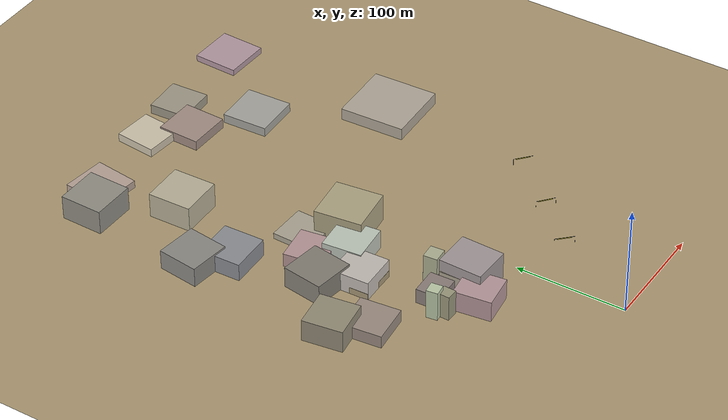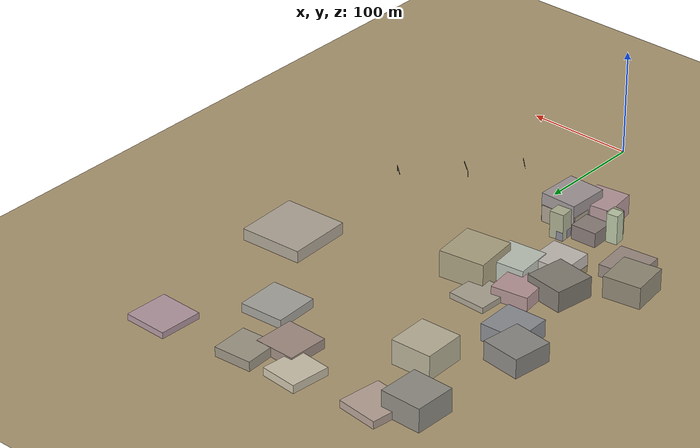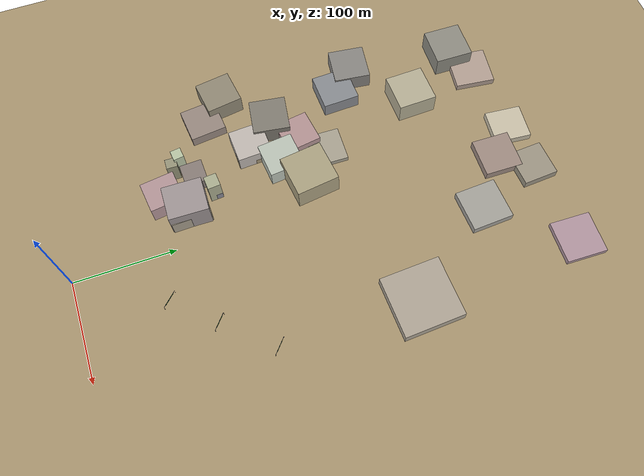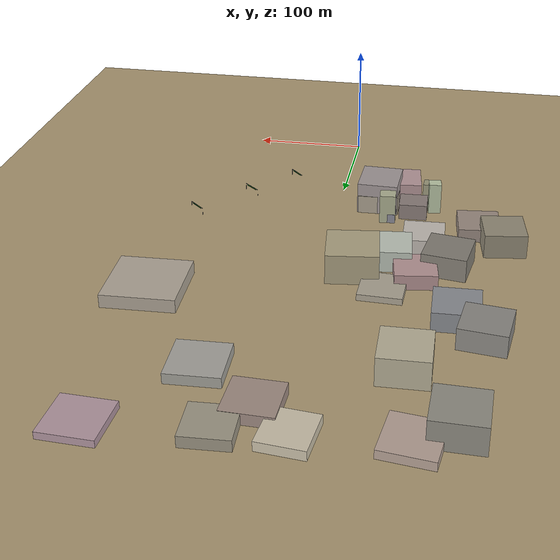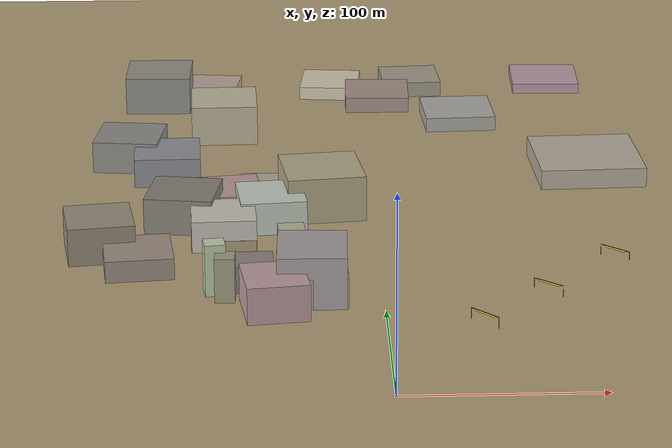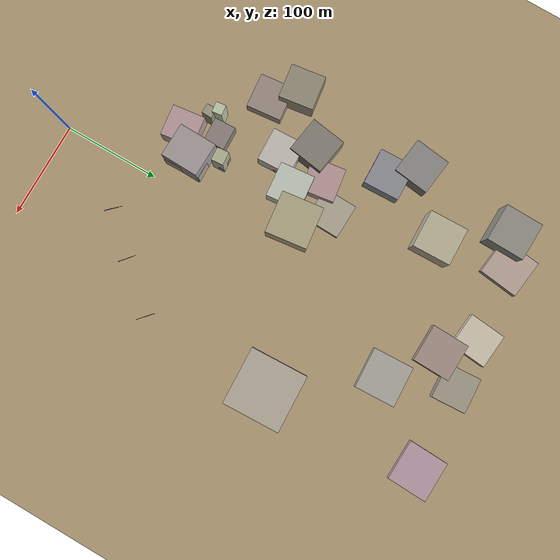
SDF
<sdf version="1.9">
 <world name="crossroad_world">
  <model name="ground_plane">
   <static>true</static>
   <pose>0 0 -0.05 0 0 0</pose>
   <link name="link">
    <collision name="collision">
     <geometry><plane><normal>0 0 1</normal><size>10000 10000</size></plane></geometry>
    </collision>
    <visual name="visual">
     <geometry><plane><normal>0 0 1</normal><size>15000 15000</size></plane></geometry>
     <material><ambient>0.68 0.60 0.45 1</ambient><diffuse>0.68 0.60 0.45 1</diffuse></material>
    </visual>
   </link>
  </model>
  <model name="gantry_73">
   <static>true</static>
   <pose>123.472 164.761 0 0 0 2.421</pose>
   <link name="link">
    <visual name="post_l">
     <pose>-8.900 0 2.925 0 0 0</pose>
     <geometry><cylinder><radius>0.1</radius><length>5.85</length></cylinder></geometry>
     <material><ambient>0.30 0.30 0.35 1</ambient><diffuse>0.30 0.30 0.35 1</diffuse></material>
    </visual>
    <visual name="post_r">
     <pose>8.900 0 2.925 0 0 0</pose>
     <geometry><cylinder><radius>0.1</radius><length>5.85</length></cylinder></geometry>
     <material><ambient>0.30 0.30 0.35 1</ambient><diffuse>0.30 0.30 0.35 1</diffuse></material>
    </visual>
    <visual name="beam">
     <pose>0 0 6.000 0 0 0</pose>
     <geometry><box><size>17.800 0.22 0.22</size></box></geometry>
     <material><ambient>0.30 0.30 0.35 1</ambient><diffuse>0.30 0.30 0.35 1</diffuse></material>
    </visual>
    <visual name="sign_border">
     <pose>0 -0.14 5.450 0 0 0</pose>
     <geometry><box><size>12.896 0.04 0.92</size></box></geometry>
     <material><ambient>0.90 0.85 0.10 1</ambient><diffuse>0.90 0.85 0.10 1</diffuse></material>
    </visual>
    <visual name="sign_panel">
     <pose>0 -0.15 5.450 0 0 0</pose>
     <geometry><box><size>12.816 0.05 0.86</size></box></geometry>
     <material><ambient>0.05 0.38 0.10 1</ambient><diffuse>0.05 0.38 0.10 1</diffuse></material>
    </visual>
    <collision name="col_post_l">
     <pose>-8.900 0 2.925 0 0 0</pose>
     <geometry><cylinder><radius>0.1</radius><length>5.85</length></cylinder></geometry>
    </collision>
    <collision name="col_post_r">
     <pose>8.900 0 2.925 0 0 0</pose>
     <geometry><cylinder><radius>0.1</radius><length>5.85</length></cylinder></geometry>
    </collision>
    <collision name="col_beam">
     <pose>0 0 6.000 0 0 0</pose>
     <geometry><box><size>17.800 0.22 0.22</size></box></geometry>
    </collision>
   </link>
  </model>
  <model name="gantry_74">
   <static>true</static>
   <pose>83.629 119.966 0 0 0 2.443</pose>
   <link name="link">
    <visual name="post_l">
     <pose>-8.900 0 2.925 0 0 0</pose>
     <geometry><cylinder><radius>0.1</radius><length>5.85</length></cylinder></geometry>
     <material><ambient>0.30 0.30 0.35 1</ambient><diffuse>0.30 0.30 0.35 1</diffuse></material>
    </visual>
    <visual name="post_r">
     <pose>8.900 0 2.925 0 0 0</pose>
     <geometry><cylinder><radius>0.1</radius><length>5.85</length></cylinder></geometry>
     <material><ambient>0.30 0.30 0.35 1</ambient><diffuse>0.30 0.30 0.35 1</diffuse></material>
    </visual>
    <visual name="beam">
     <pose>0 0 6.000 0 0 0</pose>
     <geometry><box><size>17.800 0.22 0.22</size></box></geometry>
     <material><ambient>0.30 0.30 0.35 1</ambient><diffuse>0.30 0.30 0.35 1</diffuse></material>
    </visual>
    <visual name="sign_border">
     <pose>0 -0.14 5.450 0 0 0</pose>
     <geometry><box><size>12.896 0.04 0.92</size></box></geometry>
     <material><ambient>0.90 0.85 0.10 1</ambient><diffuse>0.90 0.85 0.10 1</diffuse></material>
    </visual>
    <visual name="sign_panel">
     <pose>0 -0.15 5.450 0 0 0</pose>
     <geometry><box><size>12.816 0.05 0.86</size></box></geometry>
     <material><ambient>0.05 0.38 0.10 1</ambient><diffuse>0.05 0.38 0.10 1</diffuse></material>
    </visual>
    <collision name="col_post_l">
     <pose>-8.900 0 2.925 0 0 0</pose>
     <geometry><cylinder><radius>0.1</radius><length>5.85</length></cylinder></geometry>
    </collision>
    <collision name="col_post_r">
     <pose>8.900 0 2.925 0 0 0</pose>
     <geometry><cylinder><radius>0.1</radius><length>5.85</length></cylinder></geometry>
    </collision>
    <collision name="col_beam">
     <pose>0 0 6.000 0 0 0</pose>
     <geometry><box><size>17.800 0.22 0.22</size></box></geometry>
    </collision>
   </link>
  </model>
  <model name="gantry_142">
   <static>true</static>
   <pose>47.964 82.252 0 0 0 2.346</pose>
   <link name="link">
    <visual name="post_l">
     <pose>-8.900 0 2.925 0 0 0</pose>
     <geometry><cylinder><radius>0.1</radius><length>5.85</length></cylinder></geometry>
     <material><ambient>0.30 0.30 0.35 1</ambient><diffuse>0.30 0.30 0.35 1</diffuse></material>
    </visual>
    <visual name="post_r">
     <pose>8.900 0 2.925 0 0 0</pose>
     <geometry><cylinder><radius>0.1</radius><length>5.85</length></cylinder></geometry>
     <material><ambient>0.30 0.30 0.35 1</ambient><diffuse>0.30 0.30 0.35 1</diffuse></material>
    </visual>
    <visual name="beam">
     <pose>0 0 6.000 0 0 0</pose>
     <geometry><box><size>17.800 0.22 0.22</size></box></geometry>
     <material><ambient>0.30 0.30 0.35 1</ambient><diffuse>0.30 0.30 0.35 1</diffuse></material>
    </visual>
    <visual name="sign_border">
     <pose>0 -0.14 5.450 0 0 0</pose>
     <geometry><box><size>12.896 0.04 0.92</size></box></geometry>
     <material><ambient>0.90 0.85 0.10 1</ambient><diffuse>0.90 0.85 0.10 1</diffuse></material>
    </visual>
    <visual name="sign_panel">
     <pose>0 -0.15 5.450 0 0 0</pose>
     <geometry><box><size>12.816 0.05 0.86</size></box></geometry>
     <material><ambient>0.05 0.38 0.10 1</ambient><diffuse>0.05 0.38 0.10 1</diffuse></material>
    </visual>
    <collision name="col_post_l">
     <pose>-8.900 0 2.925 0 0 0</pose>
     <geometry><cylinder><radius>0.1</radius><length>5.85</length></cylinder></geometry>
    </collision>
    <collision name="col_post_r">
     <pose>8.900 0 2.925 0 0 0</pose>
     <geometry><cylinder><radius>0.1</radius><length>5.85</length></cylinder></geometry>
    </collision>
    <collision name="col_beam">
     <pose>0 0 6.000 0 0 0</pose>
     <geometry><box><size>17.800 0.22 0.22</size></box></geometry>
    </collision>
   </link>
  </model>
  <model name="building_87">
   <static>true</static>
   <pose>56.970 394.034 4.284 0 0 0.044</pose>
   <link name="link">
    <visual name="body">
     <geometry><box><size>41.91 41.62 8.57</size></box></geometry>
     <material><ambient>0.66 0.65 0.62 1</ambient><diffuse>0.66 0.65 0.62 1</diffuse></material>
    </visual>
    <collision name="col"><geometry><box><size>41.91 41.62 8.57</size></box></geometry></collision>
   </link>
  </model>
  <model name="building_88">
   <static>true</static>
   <pose>9.195 429.786 4.647 0 0 -0.026</pose>
   <link name="link">
    <visual name="body">
     <geometry><box><size>38.91 38.38 9.29</size></box></geometry>
     <material><ambient>0.64 0.56 0.52 1</ambient><diffuse>0.64 0.56 0.52 1</diffuse></material>
    </visual>
    <collision name="col"><geometry><box><size>38.91 38.38 9.29</size></box></geometry></collision>
   </link>
  </model>
  <model name="building_165">
   <static>true</static>
   <pose>-57.065 223.396 9.119 0 0 0.098</pose>
   <link name="link">
    <visual name="body">
     <geometry><box><size>35.84 35.59 18.24</size></box></geometry>
     <material><ambient>0.75 0.78 0.73 1</ambient><diffuse>0.75 0.78 0.73 1</diffuse></material>
    </visual>
    <collision name="col"><geometry><box><size>35.84 35.59 18.24</size></box></geometry></collision>
   </link>
  </model>
  <model name="building_166">
   <static>true</static>
   <pose>-126.447 160.690 5.800 0 0 0.103</pose>
   <link name="link">
    <visual name="body">
     <geometry><box><size>35.68 36.10 11.60</size></box></geometry>
     <material><ambient>0.61 0.55 0.51 1</ambient><diffuse>0.61 0.55 0.51 1</diffuse></material>
    </visual>
    <collision name="col"><geometry><box><size>35.68 36.10 11.60</size></box></geometry></collision>
   </link>
  </model>
  <model name="building_171">
   <static>true</static>
   <pose>-84.809 372.754 11.692 0 0 0.028</pose>
   <link name="link">
    <visual name="body">
     <geometry><box><size>38.82 39.24 23.38</size></box></geometry>
     <material><ambient>0.73 0.70 0.60 1</ambient><diffuse>0.73 0.70 0.60 1</diffuse></material>
    </visual>
    <collision name="col"><geometry><box><size>38.82 39.24 23.38</size></box></geometry></collision>
   </link>
  </model>
  <model name="building_172">
   <static>true</static>
   <pose>-147.878 184.081 10.303 0 0 0.141</pose>
   <link name="link">
    <visual name="body">
     <geometry><box><size>35.35 35.94 20.61</size></box></geometry>
     <material><ambient>0.58 0.55 0.47 1</ambient><diffuse>0.58 0.55 0.47 1</diffuse></material>
    </visual>
    <collision name="col"><geometry><box><size>35.35 35.94 20.61</size></box></geometry></collision>
   </link>
  </model>
  <model name="building_402">
   <static>true</static>
   <pose>-125.827 431.950 11.287 0 0 -0.020</pose>
   <link name="link">
    <visual name="body">
     <geometry><box><size>39.22 38.78 22.57</size></box></geometry>
     <material><ambient>0.57 0.56 0.52 1</ambient><diffuse>0.57 0.56 0.52 1</diffuse></material>
    </visual>
    <collision name="col"><geometry><box><size>39.22 38.78 22.57</size></box></geometry></collision>
   </link>
  </model>
  <model name="building_403">
   <static>true</static>
   <pose>-97.683 448.043 3.577 0 0 -0.124</pose>
   <link name="link">
    <visual name="body">
     <geometry><box><size>39.91 40.58 7.15</size></box></geometry>
     <material><ambient>0.72 0.64 0.59 1</ambient><diffuse>0.72 0.64 0.59 1</diffuse></material>
    </visual>
    <collision name="col"><geometry><box><size>39.91 40.58 7.15</size></box></geometry></collision>
   </link>
  </model>
  <model name="building_564">
   <static>true</static>
   <pose>-104.601 225.756 9.864 0 0 -0.149</pose>
   <link name="link">
    <visual name="body">
     <geometry><box><size>37.20 37.08 19.73</size></box></geometry>
     <material><ambient>0.52 0.50 0.46 1</ambient><diffuse>0.52 0.50 0.46 1</diffuse></material>
    </visual>
    <collision name="col"><geometry><box><size>37.20 37.08 19.73</size></box></geometry></collision>
   </link>
  </model>
  <model name="building_565">
   <static>true</static>
   <pose>-82.539 198.741 8.644 0 0 0.042</pose>
   <link name="link">
    <visual name="body">
     <geometry><box><size>34.47 34.51 17.29</size></box></geometry>
     <material><ambient>0.77 0.74 0.71 1</ambient><diffuse>0.77 0.74 0.71 1</diffuse></material>
    </visual>
    <collision name="col"><geometry><box><size>34.47 34.51 17.29</size></box></geometry></collision>
   </link>
  </model>
  <model name="building_566">
   <static>true</static>
   <pose>-82.539 198.741 3.115 0 0 0.024</pose>
   <link name="link">
    <visual name="body">
     <geometry><box><size>34.47 34.51 6.23</size></box></geometry>
     <material><ambient>0.66 0.60 0.47 1</ambient><diffuse>0.66 0.60 0.47 1</diffuse></material>
    </visual>
    <collision name="col"><geometry><box><size>34.47 34.51 6.23</size></box></geometry></collision>
   </link>
  </model>
  <model name="building_567">
   <static>true</static>
   <pose>-80.033 247.575 6.426 0 0 0.144</pose>
   <link name="link">
    <visual name="body">
     <geometry><box><size>34.65 34.55 12.85</size></box></geometry>
     <material><ambient>0.72 0.59 0.59 1</ambient><diffuse>0.72 0.59 0.59 1</diffuse></material>
    </visual>
    <collision name="col"><geometry><box><size>34.65 34.55 12.85</size></box></geometry></collision>
   </link>
  </model>
  <model name="building_568">
   <static>true</static>
   <pose>-29.004 243.882 12.783 0 0 0.123</pose>
   <link name="link">
    <visual name="body">
     <geometry><box><size>43.07 43.03 25.57</size></box></geometry>
     <material><ambient>0.69 0.65 0.52 1</ambient><diffuse>0.69 0.65 0.52 1</diffuse></material>
    </visual>
    <collision name="col"><geometry><box><size>43.07 43.03 25.57</size></box></geometry></collision>
   </link>
  </model>
  <model name="building_569">
   <static>true</static>
   <pose>-56.848 270.358 2.740 0 0 -0.030</pose>
   <link name="link">
    <visual name="body">
     <geometry><box><size>35.93 35.72 5.48</size></box></geometry>
     <material><ambient>0.68 0.65 0.58 1</ambient><diffuse>0.68 0.65 0.58 1</diffuse></material>
    </visual>
    <collision name="col"><geometry><box><size>35.93 35.72 5.48</size></box></geometry></collision>
   </link>
  </model>
  <model name="building_570">
   <static>true</static>
   <pose>-116.203 301.055 8.192 0 0 0.034</pose>
   <link name="link">
    <visual name="body">
     <geometry><box><size>37.43 37.11 16.38</size></box></geometry>
     <material><ambient>0.55 0.56 0.58 1</ambient><diffuse>0.55 0.56 0.58 1</diffuse></material>
    </visual>
    <collision name="col"><geometry><box><size>37.43 37.11 16.38</size></box></geometry></collision>
   </link>
  </model>
  <model name="building_572">
   <static>true</static>
   <pose>-138.540 324.135 9.103 0 0 -0.126</pose>
   <link name="link">
    <visual name="body">
     <geometry><box><size>37.34 37.15 18.21</size></box></geometry>
     <material><ambient>0.55 0.54 0.52 1</ambient><diffuse>0.55 0.54 0.52 1</diffuse></material>
    </visual>
    <collision name="col"><geometry><box><size>37.34 37.15 18.21</size></box></geometry></collision>
   </link>
  </model>
  <model name="building_573">
   <static>true</static>
   <pose>-19.278 455.220 3.889 0 0 -0.096</pose>
   <link name="link">
    <visual name="body">
     <geometry><box><size>35.60 37.24 7.78</size></box></geometry>
     <material><ambient>0.81 0.77 0.68 1</ambient><diffuse>0.81 0.77 0.68 1</diffuse></material>
    </visual>
    <collision name="col"><geometry><box><size>35.60 37.24 7.78</size></box></geometry></collision>
   </link>
  </model>
  <model name="building_574">
   <static>true</static>
   <pose>31.077 458.739 4.568 0 0 0.054</pose>
   <link name="link">
    <visual name="body">
     <geometry><box><size>36.08 35.20 9.14</size></box></geometry>
     <material><ambient>0.63 0.60 0.53 1</ambient><diffuse>0.63 0.60 0.53 1</diffuse></material>
    </visual>
    <collision name="col"><geometry><box><size>36.08 35.20 9.14</size></box></geometry></collision>
   </link>
  </model>
  <model name="building_575">
   <static>true</static>
   <pose>-55.514 102.707 9.747 0 0 0.128</pose>
   <link name="link">
    <visual name="body">
     <geometry><box><size>31.73 33.78 19.49</size></box></geometry>
     <material><ambient>0.72 0.60 0.61 1</ambient><diffuse>0.72 0.60 0.61 1</diffuse></material>
    </visual>
    <collision name="col"><geometry><box><size>31.73 33.78 19.49</size></box></geometry></collision>
   </link>
  </model>
  <model name="building_576">
   <static>true</static>
   <pose>-36.384 121.927 13.792 0 0 -0.025</pose>
   <link name="link">
    <visual name="body">
     <geometry><box><size>35.36 39.09 27.58</size></box></geometry>
     <material><ambient>0.64 0.60 0.60 1</ambient><diffuse>0.64 0.60 0.60 1</diffuse></material>
    </visual>
    <collision name="col"><geometry><box><size>35.36 39.09 27.58</size></box></geometry></collision>
   </link>
  </model>
  <model name="building_577">
   <static>true</static>
   <pose>-36.384 121.927 8.120 0 0 0.022</pose>
   <link name="link">
    <visual name="body">
     <geometry><box><size>35.36 39.09 16.24</size></box></geometry>
     <material><ambient>0.68 0.64 0.57 1</ambient><diffuse>0.68 0.64 0.57 1</diffuse></material>
    </visual>
    <collision name="col"><geometry><box><size>35.36 39.09 16.24</size></box></geometry></collision>
   </link>
  </model>
  <model name="building_578">
   <static>true</static>
   <pose>-46.595 151.019 4.055 0 0 0.060</pose>
   <link name="link">
    <visual name="body">
     <geometry><box><size>13.73 12.53 8.11</size></box></geometry>
     <material><ambient>0.55 0.55 0.60 1</ambient><diffuse>0.55 0.55 0.60 1</diffuse></material>
    </visual>
    <collision name="col"><geometry><box><size>13.73 12.53 8.11</size></box></geometry></collision>
   </link>
  </model>
  <model name="building_579">
   <static>true</static>
   <pose>-46.595 151.019 12.863 0 0 0.079</pose>
   <link name="link">
    <visual name="body">
     <geometry><box><size>13.73 12.53 25.73</size></box></geometry>
     <material><ambient>0.69 0.70 0.58 1</ambient><diffuse>0.69 0.70 0.58 1</diffuse></material>
    </visual>
    <collision name="col"><geometry><box><size>13.73 12.53 25.73</size></box></geometry></collision>
   </link>
  </model>
  <model name="building_580">
   <static>true</static>
   <pose>-68.110 136.392 6.942 0 0 0.041</pose>
   <link name="link">
    <visual name="body">
     <geometry><box><size>24.48 22.18 13.88</size></box></geometry>
     <material><ambient>0.55 0.50 0.48 1</ambient><diffuse>0.55 0.50 0.48 1</diffuse></material>
    </visual>
    <collision name="col"><geometry><box><size>24.48 22.18 13.88</size></box></geometry></collision>
   </link>
  </model>
  <model name="building_581">
   <static>true</static>
   <pose>-85.917 126.583 13.875 0 0 0.130</pose>
   <link name="link">
    <visual name="body">
     <geometry><box><size>10.70 10.31 27.75</size></box></geometry>
     <material><ambient>0.74 0.79 0.66 1</ambient><diffuse>0.74 0.79 0.66 1</diffuse></material>
    </visual>
    <collision name="col"><geometry><box><size>10.70 10.31 27.75</size></box></geometry></collision>
   </link>
  </model>
  <model name="building_582">
   <static>true</static>
   <pose>-80.430 118.573 11.784 0 0 -0.035</pose>
   <link name="link">
    <visual name="body">
     <geometry><box><size>10.33 10.97 23.57</size></box></geometry>
     <material><ambient>0.61 0.60 0.49 1</ambient><diffuse>0.61 0.60 0.49 1</diffuse></material>
    </visual>
    <collision name="col"><geometry><box><size>10.33 10.97 23.57</size></box></geometry></collision>
   </link>
  </model>
  <model name="building_583">
   <static>true</static>
   <pose>117.737 465.599 2.933 0 0 -0.037</pose>
   <link name="link">
    <visual name="body">
     <geometry><box><size>41.61 40.90 5.87</size></box></geometry>
     <material><ambient>0.71 0.60 0.64 1</ambient><diffuse>0.71 0.60 0.64 1</diffuse></material>
    </visual>
    <collision name="col"><geometry><box><size>41.61 40.90 5.87</size></box></geometry></collision>
   </link>
  </model>
  <model name="building_591">
   <static>true</static>
   <pose>124.663 301.069 5.621 0 0 0.041</pose>
   <link name="link">
    <visual name="body">
     <geometry><box><size>60.00 60.00 11.24</size></box></geometry>
     <material><ambient>0.70 0.66 0.60 1</ambient><diffuse>0.70 0.66 0.60 1</diffuse></material>
    </visual>
    <collision name="col"><geometry><box><size>60.00 60.00 11.24</size></box></geometry></collision>
   </link>
  </model>
 </world>
</sdf>
